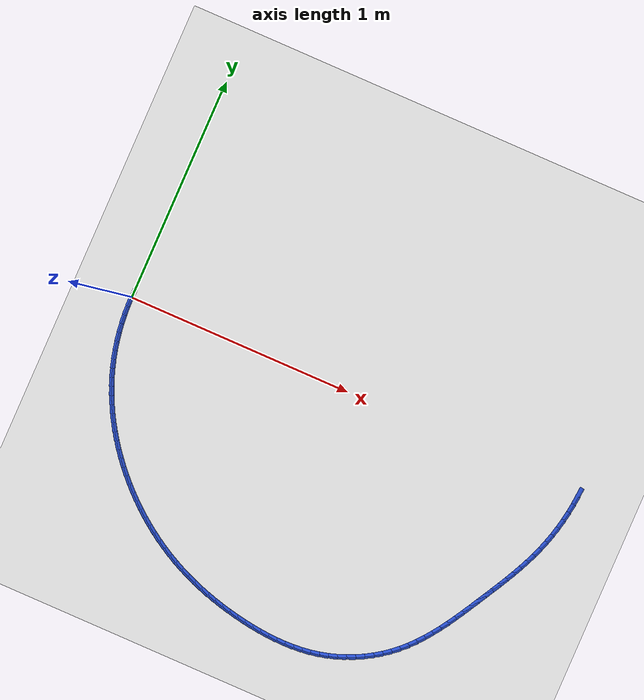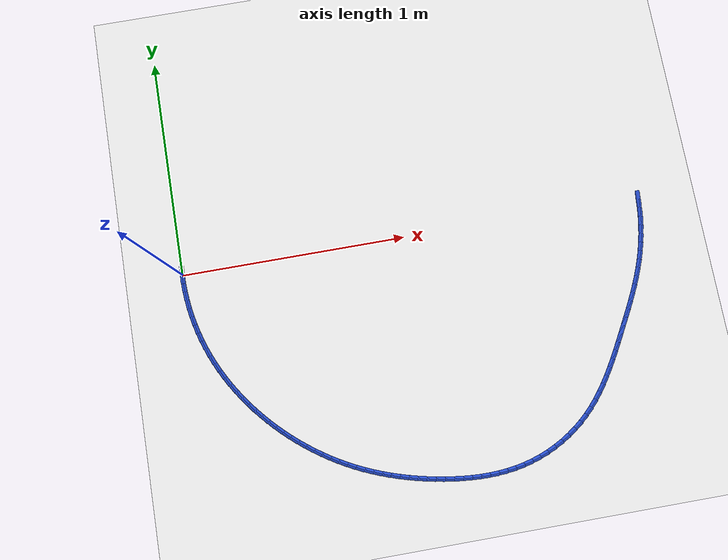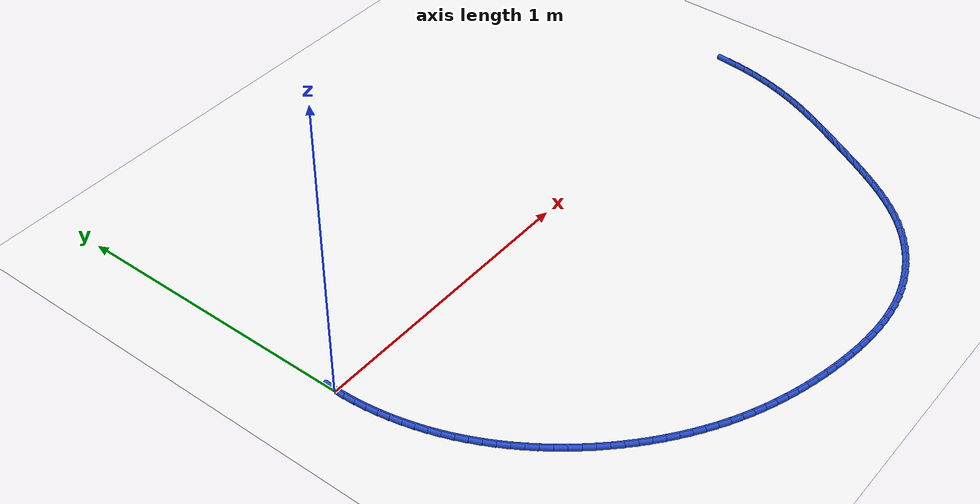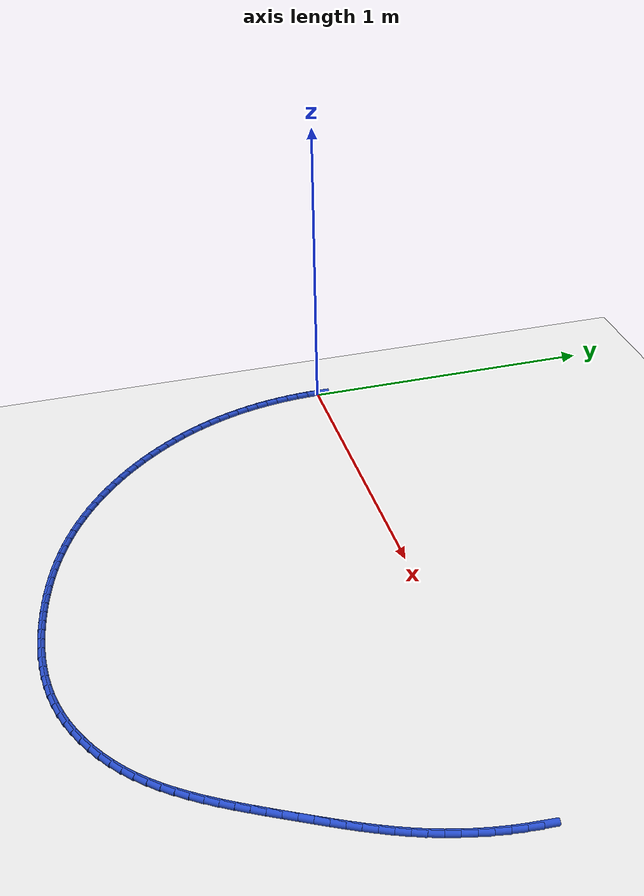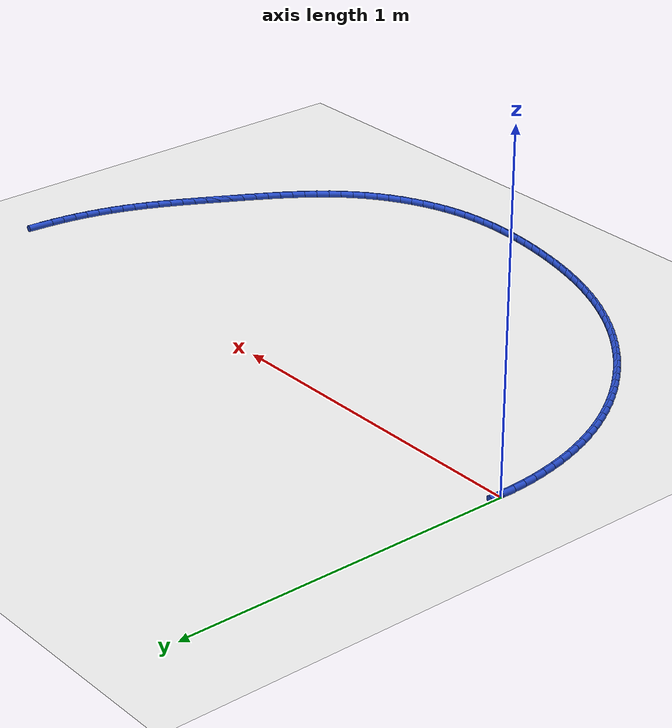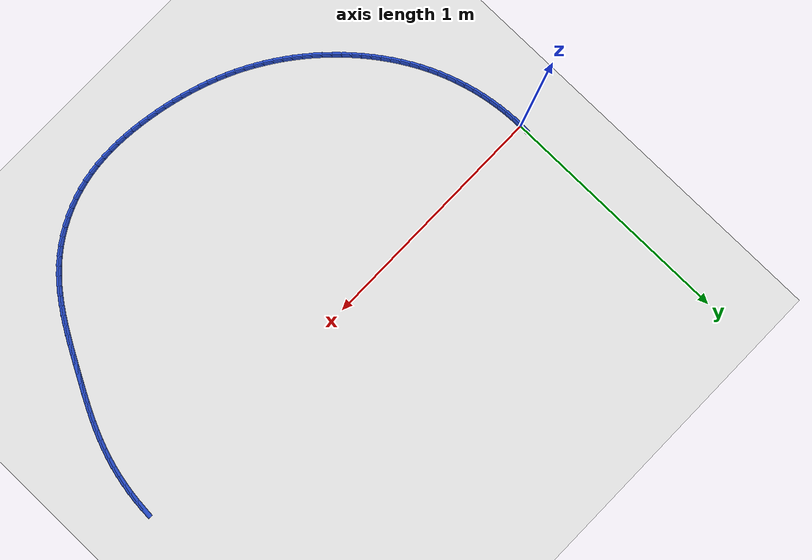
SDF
<sdf version="1.6">
 <world name="default">
  <model name="ground_plane">
   <static>1</static>
   <link name="link">
    <collision name="collision">
     <geometry><plane><normal>0 0 1</normal><size>100 100</size></plane></geometry>
     <surface><friction><ode><mu>100</mu><mu2>50</mu2></ode></friction></surface>
    </collision>
    <visual name="visual">
     <cast_shadows>0</cast_shadows>
     <geometry><plane><normal>0 0 1</normal><size>100 100</size></plane></geometry>
     <material>
      <script><uri>file://media/materials/scripts/gazebo.material</uri><name>Gazebo/WhiteGlow</name></script>
     </material>
    </visual>
   </link>
  </model>
  <model name="line">
   <link name="link_0">
    <pose>-1.734723475976807e-17 -8.326672684688674e-17 0.01 0 1.57 1.5463397447681198</pose>
    <collision name="collision">
     <geometry><cylinder><radius>0.01</radius><length>0.08</length></cylinder></geometry>
    </collision>
    <visual name="visual">
     <material>
      <script><name>Gazebo/Blue</name><uri>file://media/materials/scripts/gazebo.material</uri></script>
     </material>
     <geometry><cylinder><radius>0.01</radius><length>0.08</length></cylinder></geometry>
    </visual>
   </link>
   <link name="link_85">
    <pose>2.0703467081932185 -0.01295812340096764 0.01 0 1.57 1.4845244839015108</pose>
    <collision name="collision">
     <geometry><cylinder><radius>0.01</radius><length>0.08</length></cylinder></geometry>
    </collision>
    <visual name="visual">
     <material>
      <script><name>Gazebo/Blue</name><uri>file://media/materials/scripts/gazebo.material</uri></script>
     </material>
     <geometry><cylinder><radius>0.01</radius><length>0.08</length></cylinder></geometry>
    </visual>
   </link>
   <link name="link_86">
    <pose>2.066946954584286 -0.0522677603581691 0.01 0 1.57 1.443330827174992</pose>
    <collision name="collision">
     <geometry><cylinder><radius>0.01</radius><length>0.08</length></cylinder></geometry>
    </collision>
    <visual name="visual">
     <material>
      <script><name>Gazebo/Blue</name><uri>file://media/materials/scripts/gazebo.material</uri></script>
     </material>
     <geometry><cylinder><radius>0.01</radius><length>0.08</length></cylinder></geometry>
    </visual>
   </link>
   <link name="link_87">
    <pose>2.0619278630375093 -0.09143035405833054 0.01 0 1.57 1.4029884735146863</pose>
    <collision name="collision">
     <geometry><cylinder><radius>0.01</radius><length>0.08</length></cylinder></geometry>
    </collision>
    <visual name="visual">
     <material>
      <script><name>Gazebo/Blue</name><uri>file://media/materials/scripts/gazebo.material</uri></script>
     </material>
     <geometry><cylinder><radius>0.01</radius><length>0.08</length></cylinder></geometry>
    </visual>
   </link>
   <link name="link_88">
    <pose>2.0553368236039953 -0.13033828424824406 0.01 0 1.57 1.3632821062775435</pose>
    <collision name="collision">
     <geometry><cylinder><radius>0.01</radius><length>0.08</length></cylinder></geometry>
    </collision>
    <visual name="visual">
     <material>
      <script><name>Gazebo/Blue</name><uri>file://media/materials/scripts/gazebo.material</uri></script>
     </material>
     <geometry><cylinder><radius>0.01</radius><length>0.08</length></cylinder></geometry>
    </visual>
   </link>
   <link name="link_89">
    <pose>2.0472212263348495 -0.16888393067470264 0.01 0 1.57 1.323993542248742</pose>
    <collision name="collision">
     <geometry><cylinder><radius>0.01</radius><length>0.08</length></cylinder></geometry>
    </collision>
    <visual name="visual">
     <material>
      <script><name>Gazebo/Blue</name><uri>file://media/materials/scripts/gazebo.material</uri></script>
     </material>
     <geometry><cylinder><radius>0.01</radius><length>0.08</length></cylinder></geometry>
    </visual>
   </link>
   <link name="link_90">
    <pose>2.0376284612811775 -0.20695967308449695 0.01 0 1.57 1.2849006258452742</pose>
    <collision name="collision">
     <geometry><cylinder><radius>0.01</radius><length>0.08</length></cylinder></geometry>
    </collision>
    <visual name="visual">
     <material>
      <script><name>Gazebo/Blue</name><uri>file://media/materials/scripts/gazebo.material</uri></script>
     </material>
     <geometry><cylinder><radius>0.01</radius><length>0.08</length></cylinder></geometry>
    </visual>
   </link>
   <link name="link_91">
    <pose>2.0266059184940834 -0.24445789122441983 0.01 0 1.57 1.245778142393039</pose>
    <collision name="collision">
     <geometry><cylinder><radius>0.01</radius><length>0.08</length></cylinder></geometry>
    </collision>
    <visual name="visual">
     <material>
      <script><name>Gazebo/Blue</name><uri>file://media/materials/scripts/gazebo.material</uri></script>
     </material>
     <geometry><cylinder><radius>0.01</radius><length>0.08</length></cylinder></geometry>
    </visual>
   </link>
   <link name="link_92">
    <pose>2.014201048050268 -0.281271090853228 0.01 0 1.57 1.2075147434683184</pose>
    <collision name="collision">
     <geometry><cylinder><radius>0.01</radius><length>0.08</length></cylinder></geometry>
    </collision>
    <visual name="visual">
     <material>
      <script><name>Gazebo/Blue</name><uri>file://media/materials/scripts/gazebo.material</uri></script>
     </material>
     <geometry><cylinder><radius>0.01</radius><length>0.08</length></cylinder></geometry>
    </visual>
   </link>
   <link name="link_93">
    <pose>2.000487071893668 -0.31734588071222397 0.01 0 1.57 1.172996963601097</pose>
    <collision name="collision">
     <geometry><cylinder><radius>0.01</radius><length>0.08</length></cylinder></geometry>
    </collision>
    <visual name="visual">
     <material>
      <script><name>Gazebo/Blue</name><uri>file://media/materials/scripts/gazebo.material</uri></script>
     </material>
     <geometry><cylinder><radius>0.01</radius><length>0.08</length></cylinder></geometry>
    </visual>
   </link>
   <link name="link_94">
    <pose>1.985603036824332 -0.35276705592277136 0.01 0 1.57 1.1429141929614979</pose>
    <collision name="collision">
     <geometry><cylinder><radius>0.01</radius><length>0.08</length></cylinder></geometry>
    </collision>
    <visual name="visual">
     <material>
      <script><name>Gazebo/Blue</name><uri>file://media/materials/scripts/gazebo.material</uri></script>
     </material>
     <geometry><cylinder><radius>0.01</radius><length>0.08</length></cylinder></geometry>
    </visual>
   </link>
   <link name="link_95">
    <pose>1.969698347960748 -0.3876411568649848 0.01 0 1.57 1.117443313857368</pose>
    <collision name="collision">
     <geometry><cylinder><radius>0.01</radius><length>0.08</length></cylinder></geometry>
    </collision>
    <visual name="visual">
     <material>
      <script><name>Gazebo/Blue</name><uri>file://media/materials/scripts/gazebo.material</uri></script>
     </material>
     <geometry><cylinder><radius>0.01</radius><length>0.08</length></cylinder></geometry>
    </visual>
   </link>
   <link name="link_96">
    <pose>1.952922410421403 -0.42207472391898143 0.01 0 1.57 1.0966937806045811</pose>
    <collision name="collision">
     <geometry><cylinder><radius>0.01</radius><length>0.08</length></cylinder></geometry>
    </collision>
    <visual name="visual">
     <material>
      <script><name>Gazebo/Blue</name><uri>file://media/materials/scripts/gazebo.material</uri></script>
     </material>
     <geometry><cylinder><radius>0.01</radius><length>0.08</length></cylinder></geometry>
    </visual>
   </link>
   <link name="link_97">
    <pose>1.9354246293247845 -0.45617429746487764 0.01 0 1.57 1.080722045909562</pose>
    <collision name="collision">
     <geometry><cylinder><radius>0.01</radius><length>0.08</length></cylinder></geometry>
    </collision>
    <visual name="visual">
     <material>
      <script><name>Gazebo/Blue</name><uri>file://media/materials/scripts/gazebo.material</uri></script>
     </material>
     <geometry><cylinder><radius>0.01</radius><length>0.08</length></cylinder></geometry>
    </visual>
   </link>
   <link name="link_98">
    <pose>1.9173544097893798 -0.4900464178827895 0.01 0 1.57 1.0695448128097673</pose>
    <collision name="collision">
     <geometry><cylinder><radius>0.01</radius><length>0.08</length></cylinder></geometry>
    </collision>
    <visual name="visual">
     <material>
      <script><name>Gazebo/Blue</name><uri>file://media/materials/scripts/gazebo.material</uri></script>
     </material>
     <geometry><cylinder><radius>0.01</radius><length>0.08</length></cylinder></geometry>
    </visual>
   </link>
   <link name="link_99">
    <pose>1.8988611569336746 -0.5237976255528342 0.01 0 1.57 1.0631499691859727</pose>
    <collision name="collision">
     <geometry><cylinder><radius>0.01</radius><length>0.08</length></cylinder></geometry>
    </collision>
    <visual name="visual">
     <material>
      <script><name>Gazebo/Blue</name><uri>file://media/materials/scripts/gazebo.material</uri></script>
     </material>
     <geometry><cylinder><radius>0.01</radius><length>0.08</length></cylinder></geometry>
    </visual>
   </link>
   <link name="link_100">
    <pose>1.8800942758761578 -0.5575344608551265 0.01 0 1.57 1.0612336300380922</pose>
    <collision name="collision">
     <geometry><cylinder><radius>0.01</radius><length>0.08</length></cylinder></geometry>
    </collision>
    <visual name="visual">
     <material>
      <script><name>Gazebo/Blue</name><uri>file://media/materials/scripts/gazebo.material</uri></script>
     </material>
     <geometry><cylinder><radius>0.01</radius><length>0.08</length></cylinder></geometry>
    </visual>
   </link>
   <link name="link_101">
    <pose>1.8611951581894954 -0.5913562829752291 0.01 0 1.57 1.0586135874599247</pose>
    <collision name="collision">
     <geometry><cylinder><radius>0.01</radius><length>0.08</length></cylinder></geometry>
    </collision>
    <visual name="visual">
     <material>
      <script><name>Gazebo/Blue</name><uri>file://media/materials/scripts/gazebo.material</uri></script>
     </material>
     <geometry><cylinder><radius>0.01</radius><length>0.08</length></cylinder></geometry>
    </visual>
   </link>
   <link name="link_102">
    <pose>1.8421527488368659 -0.6252258388191491 0.01 0 1.57 1.0506841521490629</pose>
    <collision name="collision">
     <geometry><cylinder><radius>0.01</radius><length>0.08</length></cylinder></geometry>
    </collision>
    <visual name="visual">
     <material>
      <script><name>Gazebo/Blue</name><uri>file://media/materials/scripts/gazebo.material</uri></script>
     </material>
     <geometry><cylinder><radius>0.01</radius><length>0.08</length></cylinder></geometry>
    </visual>
   </link>
   <link name="link_103">
    <pose>1.8228193928582714 -0.6589834637354668 0.01 0 1.57 1.0372619425298901</pose>
    <collision name="collision">
     <geometry><cylinder><radius>0.01</radius><length>0.08</length></cylinder></geometry>
    </collision>
    <visual name="visual">
     <material>
      <script><name>Gazebo/Blue</name><uri>file://media/materials/scripts/gazebo.material</uri></script>
     </material>
     <geometry><cylinder><radius>0.01</radius><length>0.08</length></cylinder></geometry>
    </visual>
   </link>
   <link name="link_104">
    <pose>1.8030426030587525 -0.6924651627525557 0.01 0 1.57 1.018278907282143</pose>
    <collision name="collision">
     <geometry><cylinder><radius>0.01</radius><length>0.08</length></cylinder></geometry>
    </collision>
    <visual name="visual">
     <material>
      <script><name>Gazebo/Blue</name><uri>file://media/materials/scripts/gazebo.material</uri></script>
     </material>
     <geometry><cylinder><radius>0.01</radius><length>0.08</length></cylinder></geometry>
    </visual>
   </link>
   <link name="link_105">
    <pose>1.782669892243351 -0.7255069408987871 0.01 0 1.57 0.9936303065916782</pose>
    <collision name="collision">
     <geometry><cylinder><radius>0.01</radius><length>0.08</length></cylinder></geometry>
    </collision>
    <visual name="visual">
     <material>
      <script><name>Gazebo/Blue</name><uri>file://media/materials/scripts/gazebo.material</uri></script>
     </material>
     <geometry><cylinder><radius>0.01</radius><length>0.08</length></cylinder></geometry>
    </visual>
   </link>
   <link name="link_106">
    <pose>1.7615487732171047 -0.7579448032025338 0.01 0 1.57 0.963191313983952</pose>
    <collision name="collision">
     <geometry><cylinder><radius>0.01</radius><length>0.08</length></cylinder></geometry>
    </collision>
    <visual name="visual">
     <material>
      <script><name>Gazebo/Blue</name><uri>file://media/materials/scripts/gazebo.material</uri></script>
     </material>
     <geometry><cylinder><radius>0.01</radius><length>0.08</length></cylinder></geometry>
    </visual>
   </link>
   <link name="link_107">
    <pose>1.7395267587850543 -0.7896147546921682 0.01 0 1.57 0.9268401667294303</pose>
    <collision name="collision">
     <geometry><cylinder><radius>0.01</radius><length>0.08</length></cylinder></geometry>
    </collision>
    <visual name="visual">
     <material>
      <script><name>Gazebo/Blue</name><uri>file://media/materials/scripts/gazebo.material</uri></script>
     </material>
     <geometry><cylinder><radius>0.01</radius><length>0.08</length></cylinder></geometry>
    </visual>
   </link>
   <link name="link_108">
    <pose>1.71645136175224 -0.8203528003960635 0.01 0 1.57 0.8844890827794963</pose>
    <collision name="collision">
     <geometry><cylinder><radius>0.01</radius><length>0.08</length></cylinder></geometry>
    </collision>
    <visual name="visual">
     <material>
      <script><name>Gazebo/Blue</name><uri>file://media/materials/scripts/gazebo.material</uri></script>
     </material>
     <geometry><cylinder><radius>0.01</radius><length>0.08</length></cylinder></geometry>
    </visual>
   </link>
   <link name="link_109">
    <pose>1.692170094923701 -0.8499949453425913 0.01 0 1.57 0.8361234073815302</pose>
    <collision name="collision">
     <geometry><cylinder><radius>0.01</radius><length>0.08</length></cylinder></geometry>
    </collision>
    <visual name="visual">
     <material>
      <script><name>Gazebo/Blue</name><uri>file://media/materials/scripts/gazebo.material</uri></script>
     </material>
     <geometry><cylinder><radius>0.01</radius><length>0.08</length></cylinder></geometry>
    </visual>
   </link>
   <link name="link_110">
    <pose>1.666530471104478 -0.8783771945601251 0.01 0 1.57 0.781847750403918</pose>
    <collision name="collision">
     <geometry><cylinder><radius>0.01</radius><length>0.08</length></cylinder></geometry>
    </collision>
    <visual name="visual">
     <material>
      <script><name>Gazebo/Blue</name><uri>file://media/materials/scripts/gazebo.material</uri></script>
     </material>
     <geometry><cylinder><radius>0.01</radius><length>0.08</length></cylinder></geometry>
    </visual>
   </link>
   <link name="link_111">
    <pose>1.6393800030996108 -0.9053355530770362 0.01 0 1.57 0.7220717400866286</pose>
    <collision name="collision">
     <geometry><cylinder><radius>0.01</radius><length>0.08</length></cylinder></geometry>
    </collision>
    <visual name="visual">
     <material>
      <script><name>Gazebo/Blue</name><uri>file://media/materials/scripts/gazebo.material</uri></script>
     </material>
     <geometry><cylinder><radius>0.01</radius><length>0.08</length></cylinder></geometry>
    </visual>
   </link>
   <link name="link_112">
    <pose>1.6105722898065495 -0.9307076584757472 0.01 0 1.57 0.6604538289510311</pose>
    <collision name="collision">
     <geometry><cylinder><radius>0.01</radius><length>0.08</length></cylinder></geometry>
    </collision>
    <visual name="visual">
     <material>
      <script><name>Gazebo/Blue</name><uri>file://media/materials/scripts/gazebo.material</uri></script>
     </material>
     <geometry><cylinder><radius>0.01</radius><length>0.08</length></cylinder></geometry>
    </visual>
   </link>
   <link name="link_113">
    <pose>1.5801105889659732 -0.9543712933338835 0.01 0 1.57 0.6002450952311604</pose>
    <collision name="collision">
     <geometry><cylinder><radius>0.01</radius><length>0.08</length></cylinder></geometry>
    </collision>
    <visual name="visual">
     <material>
      <script><name>Gazebo/Blue</name><uri>file://media/materials/scripts/gazebo.material</uri></script>
     </material>
     <geometry><cylinder><radius>0.01</radius><length>0.08</length></cylinder></geometry>
    </visual>
   </link>
   <link name="link_114">
    <pose>1.548153400283253 -0.9762458828596913 0.01 0 1.57 0.5411860396332345</pose>
    <collision name="collision">
     <geometry><cylinder><radius>0.01</radius><length>0.08</length></cylinder></geometry>
    </collision>
    <visual name="visual">
     <material>
      <script><name>Gazebo/Blue</name><uri>file://media/materials/scripts/gazebo.material</uri></script>
     </material>
     <geometry><cylinder><radius>0.01</radius><length>0.08</length></cylinder></geometry>
    </visual>
   </link>
   <link name="link_115">
    <pose>1.514866426650068 -0.9962527844685202 0.01 0 1.57 0.4828498829037632</pose>
    <collision name="collision">
     <geometry><cylinder><radius>0.01</radius><length>0.08</length></cylinder></geometry>
    </collision>
    <visual name="visual">
     <material>
      <script><name>Gazebo/Blue</name><uri>file://media/materials/scripts/gazebo.material</uri></script>
     </material>
     <geometry><cylinder><radius>0.01</radius><length>0.08</length></cylinder></geometry>
    </visual>
   </link>
   <link name="link_116">
    <pose>1.4804153709580956 -1.014313355575717 0.01 0 1.57 0.42480754951045624</pose>
    <collision name="collision">
     <geometry><cylinder><radius>0.01</radius><length>0.08</length></cylinder></geometry>
    </collision>
    <visual name="visual">
     <material>
      <script><name>Gazebo/Blue</name><uri>file://media/materials/scripts/gazebo.material</uri></script>
     </material>
     <geometry><cylinder><radius>0.01</radius><length>0.08</length></cylinder></geometry>
    </visual>
   </link>
   <link name="link_117">
    <pose>1.4449659360990141 -1.0303489535966308 0.01 0 1.57 0.3666292740612634</pose>
    <collision name="collision">
     <geometry><cylinder><radius>0.01</radius><length>0.08</length></cylinder></geometry>
    </collision>
    <visual name="visual">
     <material>
      <script><name>Gazebo/Blue</name><uri>file://media/materials/scripts/gazebo.material</uri></script>
     </material>
     <geometry><cylinder><radius>0.01</radius><length>0.08</length></cylinder></geometry>
    </visual>
   </link>
   <link name="link_118">
    <pose>1.408683824964502 -1.0442809359466103 0.01 0 1.57 0.3078855853134023</pose>
    <collision name="collision">
     <geometry><cylinder><radius>0.01</radius><length>0.08</length></cylinder></geometry>
    </collision>
    <visual name="visual">
     <material>
      <script><name>Gazebo/Blue</name><uri>file://media/materials/scripts/gazebo.material</uri></script>
     </material>
     <geometry><cylinder><radius>0.01</radius><length>0.08</length></cylinder></geometry>
    </visual>
   </link>
   <link name="link_119">
    <pose>1.3717347404462368 -1.0560306600410037 0.01 0 1.57 0.24818150163143762</pose>
    <collision name="collision">
     <geometry><cylinder><radius>0.01</radius><length>0.08</length></cylinder></geometry>
    </collision>
    <visual name="visual">
     <material>
      <script><name>Gazebo/Blue</name><uri>file://media/materials/scripts/gazebo.material</uri></script>
     </material>
     <geometry><cylinder><radius>0.01</radius><length>0.08</length></cylinder></geometry>
    </visual>
   </link>
   <link name="link_120">
    <pose>1.3342837065252577 -1.0655209675514457 0.01 0 1.57 0.1890291690347427</pose>
    <collision name="collision">
     <geometry><cylinder><radius>0.01</radius><length>0.08</length></cylinder></geometry>
    </collision>
    <visual name="visual">
     <material>
      <script><name>Gazebo/Blue</name><uri>file://media/materials/scripts/gazebo.material</uri></script>
     </material>
     <geometry><cylinder><radius>0.01</radius><length>0.08</length></cylinder></geometry>
    </visual>
   </link>
   <link name="link_121">
    <pose>1.296457847856799 -1.072757556875134 0.01 0 1.57 0.13331050287324353</pose>
    <collision name="collision">
     <geometry><cylinder><radius>0.01</radius><length>0.08</length></cylinder></geometry>
    </collision>
    <visual name="visual">
     <material>
      <script><name>Gazebo/Blue</name><uri>file://media/materials/scripts/gazebo.material</uri></script>
     </material>
     <geometry><cylinder><radius>0.01</radius><length>0.08</length></cylinder></geometry>
    </visual>
   </link>
   <link name="link_122">
    <pose>1.2583271199152875 -1.0778711115118973 0.01 0 1.57 0.0814335693078589</pose>
    <collision name="collision">
     <geometry><cylinder><radius>0.01</radius><length>0.08</length></cylinder></geometry>
    </collision>
    <visual name="visual">
     <material>
      <script><name>Gazebo/Blue</name><uri>file://media/materials/scripts/gazebo.material</uri></script>
     </material>
     <geometry><cylinder><radius>0.01</radius><length>0.08</length></cylinder></geometry>
    </visual>
   </link>
   <link name="link_123">
    <pose>1.2199567399547586 -1.0810026738114422 0.01 0 1.57 0.03347091759458577</pose>
    <collision name="collision">
     <geometry><cylinder><radius>0.01</radius><length>0.08</length></cylinder></geometry>
    </collision>
    <visual name="visual">
     <material>
      <script><name>Gazebo/Blue</name><uri>file://media/materials/scripts/gazebo.material</uri></script>
     </material>
     <geometry><cylinder><radius>0.01</radius><length>0.08</length></cylinder></geometry>
    </visual>
   </link>
   <link name="link_124">
    <pose>1.1814119252292472 -1.082293286123476 0.01 0 1.57 -0.010588288112732163</pose>
    <collision name="collision">
     <geometry><cylinder><radius>0.01</radius><length>0.08</length></cylinder></geometry>
    </collision>
    <visual name="visual">
     <material>
      <script><name>Gazebo/Blue</name><uri>file://media/materials/scripts/gazebo.material</uri></script>
     </material>
     <geometry><cylinder><radius>0.01</radius><length>0.08</length></cylinder></geometry>
    </visual>
   </link>
   <link name="link_125">
    <pose>1.14275789299279 -1.0818839907977051 0.01 0 1.57 -0.05081566460030541</pose>
    <collision name="collision">
     <geometry><cylinder><radius>0.01</radius><length>0.08</length></cylinder></geometry>
    </collision>
    <visual name="visual">
     <material>
      <script><name>Gazebo/Blue</name><uri>file://media/materials/scripts/gazebo.material</uri></script>
     </material>
     <geometry><cylinder><radius>0.01</radius><length>0.08</length></cylinder></geometry>
    </visual>
   </link>
   <link name="link_126">
    <pose>1.1040598604994216 -1.0799158301838367 0.01 0 1.57 -0.08732292867086368</pose>
    <collision name="collision">
     <geometry><cylinder><radius>0.01</radius><length>0.08</length></cylinder></geometry>
    </collision>
    <visual name="visual">
     <material>
      <script><name>Gazebo/Blue</name><uri>file://media/materials/scripts/gazebo.material</uri></script>
     </material>
     <geometry><cylinder><radius>0.01</radius><length>0.08</length></cylinder></geometry>
    </visual>
   </link>
   <link name="link_127">
    <pose>1.0653830450031794 -1.0765298466315774 0.01 0 1.57 -0.12024421223643925</pose>
    <collision name="collision">
     <geometry><cylinder><radius>0.01</radius><length>0.08</length></cylinder></geometry>
    </collision>
    <visual name="visual">
     <material>
      <script><name>Gazebo/Blue</name><uri>file://media/materials/scripts/gazebo.material</uri></script>
     </material>
     <geometry><cylinder><radius>0.01</radius><length>0.08</length></cylinder></geometry>
    </visual>
   </link>
   <link name="link_128">
    <pose>1.0267926637580984 -1.0718670824906342 0.01 0 1.57 -0.14972164831444895</pose>
    <collision name="collision">
     <geometry><cylinder><radius>0.01</radius><length>0.08</length></cylinder></geometry>
    </collision>
    <visual name="visual">
     <material>
      <script><name>Gazebo/Blue</name><uri>file://media/materials/scripts/gazebo.material</uri></script>
     </material>
     <geometry><cylinder><radius>0.01</radius><length>0.08</length></cylinder></geometry>
    </visual>
   </link>
   <link name="link_129">
    <pose>0.9883539340182139 -1.0660685801107137 0.01 0 1.57 -0.17609617010261241</pose>
    <collision name="collision">
     <geometry><cylinder><radius>0.01</radius><length>0.08</length></cylinder></geometry>
    </collision>
    <visual name="visual">
     <material>
      <script><name>Gazebo/Blue</name><uri>file://media/materials/scripts/gazebo.material</uri></script>
     </material>
     <geometry><cylinder><radius>0.01</radius><length>0.08</length></cylinder></geometry>
    </visual>
   </link>
   <link name="link_130">
    <pose>0.9501304293879151 -1.059267117427658 0.01 0 1.57 -0.20181646050760502</pose>
    <collision name="collision">
     <geometry><cylinder><radius>0.01</radius><length>0.08</length></cylinder></geometry>
    </collision>
    <visual name="visual">
     <material>
      <script><name>Gazebo/Blue</name><uri>file://media/materials/scripts/gazebo.material</uri></script>
     </material>
     <geometry><cylinder><radius>0.01</radius><length>0.08</length></cylinder></geometry>
    </visual>
   </link>
   <link name="link_131">
    <pose>0.9121666684895648 -1.0514996622647808 0.01 0 1.57 -0.22842843514844216</pose>
    <collision name="collision">
     <geometry><cylinder><radius>0.01</radius><length>0.08</length></cylinder></geometry>
    </collision>
    <visual name="visual">
     <material>
      <script><name>Gazebo/Blue</name><uri>file://media/materials/scripts/gazebo.material</uri></script>
     </material>
     <geometry><cylinder><radius>0.01</radius><length>0.08</length></cylinder></geometry>
    </visual>
   </link>
   <link name="link_132">
    <pose>0.8744949012659788 -1.0427414944539455 0.01 0 1.57 -0.25597787289016</pose>
    <collision name="collision">
     <geometry><cylinder><radius>0.01</radius><length>0.08</length></cylinder></geometry>
    </collision>
    <visual name="visual">
     <material>
      <script><name>Gazebo/Blue</name><uri>file://media/materials/scripts/gazebo.material</uri></script>
     </material>
     <geometry><cylinder><radius>0.01</radius><length>0.08</length></cylinder></geometry>
    </visual>
   </link>
   <link name="link_133">
    <pose>0.8371471742958579 -1.0329668712945068 0.01 0 1.57 -0.28448141193538745</pose>
    <collision name="collision">
     <geometry><cylinder><radius>0.01</radius><length>0.08</length></cylinder></geometry>
    </collision>
    <visual name="visual">
     <material>
      <script><name>Gazebo/Blue</name><uri>file://media/materials/scripts/gazebo.material</uri></script>
     </material>
     <geometry><cylinder><radius>0.01</radius><length>0.08</length></cylinder></geometry>
    </visual>
   </link>
   <link name="link_134">
    <pose>0.8001555341579029 -1.0221500500858214 0.01 0 1.57 -0.3139507318787405</pose>
    <collision name="collision">
     <geometry><cylinder><radius>0.01</radius><length>0.08</length></cylinder></geometry>
    </collision>
    <visual name="visual">
     <material>
      <script><name>Gazebo/Blue</name><uri>file://media/materials/scripts/gazebo.material</uri></script>
     </material>
     <geometry><cylinder><radius>0.01</radius><length>0.08</length></cylinder></geometry>
    </visual>
   </link>
   <link name="link_135">
    <pose>0.7635520274308152 -1.0102652881272447 0.01 0 1.57 -0.34439167078153615</pose>
    <collision name="collision">
     <geometry><cylinder><radius>0.01</radius><length>0.08</length></cylinder></geometry>
    </collision>
    <visual name="visual">
     <material>
      <script><name>Gazebo/Blue</name><uri>file://media/materials/scripts/gazebo.material</uri></script>
     </material>
     <geometry><cylinder><radius>0.01</radius><length>0.08</length></cylinder></geometry>
    </visual>
   </link>
   <link name="link_136">
    <pose>0.7273687006932953 -0.9972868427181321 0.01 0 1.57 -0.3758033096052341</pose>
    <collision name="collision">
     <geometry><cylinder><radius>0.01</radius><length>0.08</length></cylinder></geometry>
    </collision>
    <visual name="visual">
     <material>
      <script><name>Gazebo/Blue</name><uri>file://media/materials/scripts/gazebo.material</uri></script>
     </material>
     <geometry><cylinder><radius>0.01</radius><length>0.08</length></cylinder></geometry>
    </visual>
   </link>
   <link name="link_137">
    <pose>0.6916376005240455 -0.9831889711578398 0.01 0 1.57 -0.40817705097606094</pose>
    <collision name="collision">
     <geometry><cylinder><radius>0.01</radius><length>0.08</length></cylinder></geometry>
    </collision>
    <visual name="visual">
     <material>
      <script><name>Gazebo/Blue</name><uri>file://media/materials/scripts/gazebo.material</uri></script>
     </material>
     <geometry><cylinder><radius>0.01</radius><length>0.08</length></cylinder></geometry>
    </visual>
   </link>
   <link name="link_138">
    <pose>0.6563907735017669 -0.9679459307457232 0.01 0 1.57 -0.4414957267086597</pose>
    <collision name="collision">
     <geometry><cylinder><radius>0.01</radius><length>0.08</length></cylinder></geometry>
    </collision>
    <visual name="visual">
     <material>
      <script><name>Gazebo/Blue</name><uri>file://media/materials/scripts/gazebo.material</uri></script>
     </material>
     <geometry><cylinder><radius>0.01</radius><length>0.08</length></cylinder></geometry>
    </visual>
   </link>
   <link name="link_139">
    <pose>0.6216602662051605 -0.9515319787811386 0.01 0 1.57 -0.47564944821991606</pose>
    <collision name="collision">
     <geometry><cylinder><radius>0.01</radius><length>0.08</length></cylinder></geometry>
    </collision>
    <visual name="visual">
     <material>
      <script><name>Gazebo/Blue</name><uri>file://media/materials/scripts/gazebo.material</uri></script>
     </material>
     <geometry><cylinder><radius>0.01</radius><length>0.08</length></cylinder></geometry>
    </visual>
   </link>
   <link name="link_140">
    <pose>0.5874782660344363 -0.9339250492846187 0.01 0 1.57 -0.5098254470307054</pose>
    <collision name="collision">
     <geometry><cylinder><radius>0.01</radius><length>0.08</length></cylinder></geometry>
    </collision>
    <visual name="visual">
     <material>
      <script><name>Gazebo/Blue</name><uri>file://media/materials/scripts/gazebo.material</uri></script>
     </material>
     <geometry><cylinder><radius>0.01</radius><length>0.08</length></cylinder></geometry>
    </visual>
   </link>
   <link name="link_141">
    <pose>0.5538783102711954 -0.9151383204487485 0.01 0 1.57 -0.5436136171778438</pose>
    <collision name="collision">
     <geometry><cylinder><radius>0.01</radius><length>0.08</length></cylinder></geometry>
    </collision>
    <visual name="visual">
     <material>
      <script><name>Gazebo/Blue</name><uri>file://media/materials/scripts/gazebo.material</uri></script>
     </material>
     <geometry><cylinder><radius>0.01</radius><length>0.08</length></cylinder></geometry>
    </visual>
   </link>
   <link name="link_142">
    <pose>0.5208946876588253 -0.8952045904480594 0.01 0 1.57 -0.5770549290567888</pose>
    <collision name="collision">
     <geometry><cylinder><radius>0.01</radius><length>0.08</length></cylinder></geometry>
    </collision>
    <visual name="visual">
     <material>
      <script><name>Gazebo/Blue</name><uri>file://media/materials/scripts/gazebo.material</uri></script>
     </material>
     <geometry><cylinder><radius>0.01</radius><length>0.08</length></cylinder></geometry>
    </visual>
   </link>
   <link name="link_143">
    <pose>0.48856169504808533 -0.8741568691331324 0.01 0 1.57 -0.6101968123996717</pose>
    <collision name="collision">
     <geometry><cylinder><radius>0.01</radius><length>0.08</length></cylinder></geometry>
    </collision>
    <visual name="visual">
     <material>
      <script><name>Gazebo/Blue</name><uri>file://media/materials/scripts/gazebo.material</uri></script>
     </material>
     <geometry><cylinder><radius>0.01</radius><length>0.08</length></cylinder></geometry>
    </visual>
   </link>
   <link name="link_144">
    <pose>0.4569136292897332 -0.8520281663545458 0.01 0 1.57 -0.6430880143653126</pose>
    <collision name="collision">
     <geometry><cylinder><radius>0.01</radius><length>0.08</length></cylinder></geometry>
    </collision>
    <visual name="visual">
     <material>
      <script><name>Gazebo/Blue</name><uri>file://media/materials/scripts/gazebo.material</uri></script>
     </material>
     <geometry><cylinder><radius>0.01</radius><length>0.08</length></cylinder></geometry>
    </visual>
   </link>
   <link name="link_145">
    <pose>0.42598478723452743 -0.8288514919628809 0.01 0 1.57 -0.675778300500029</pose>
    <collision name="collision">
     <geometry><cylinder><radius>0.01</radius><length>0.08</length></cylinder></geometry>
    </collision>
    <visual name="visual">
     <material>
      <script><name>Gazebo/Blue</name><uri>file://media/materials/scripts/gazebo.material</uri></script>
     </material>
     <geometry><cylinder><radius>0.01</radius><length>0.08</length></cylinder></geometry>
    </visual>
   </link>
   <link name="link_146">
    <pose>0.3958094657332261 -0.8046598558087165 0.01 0 1.57 -0.7083181940229016</pose>
    <collision name="collision">
     <geometry><cylinder><radius>0.01</radius><length>0.08</length></cylinder></geometry>
    </collision>
    <visual name="visual">
     <material>
      <script><name>Gazebo/Blue</name><uri>file://media/materials/scripts/gazebo.material</uri></script>
     </material>
     <geometry><cylinder><radius>0.01</radius><length>0.08</length></cylinder></geometry>
    </visual>
   </link>
   <link name="link_147">
    <pose>0.36642196163658725 -0.779486267742633 0.01 0 1.57 -0.7407587459722306</pose>
    <collision name="collision">
     <geometry><cylinder><radius>0.01</radius><length>0.08</length></cylinder></geometry>
    </collision>
    <visual name="visual">
     <material>
      <script><name>Gazebo/Blue</name><uri>file://media/materials/scripts/gazebo.material</uri></script>
     </material>
     <geometry><cylinder><radius>0.01</radius><length>0.08</length></cylinder></geometry>
    </visual>
   </link>
   <link name="link_148">
    <pose>0.33785657179537026 -0.7533637376152107 0.01 0 1.57 -0.7731513284601881</pose>
    <collision name="collision">
     <geometry><cylinder><radius>0.01</radius><length>0.08</length></cylinder></geometry>
    </collision>
    <visual name="visual">
     <material>
      <script><name>Gazebo/Blue</name><uri>file://media/materials/scripts/gazebo.material</uri></script>
     </material>
     <geometry><cylinder><radius>0.01</radius><length>0.08</length></cylinder></geometry>
    </visual>
   </link>
   <link name="link_149">
    <pose>0.3101475930603328 -0.7263252752770292 0.01 0 1.57 -0.8055474431277684</pose>
    <collision name="collision">
     <geometry><cylinder><radius>0.01</radius><length>0.08</length></cylinder></geometry>
    </collision>
    <visual name="visual">
     <material>
      <script><name>Gazebo/Blue</name><uri>file://media/materials/scripts/gazebo.material</uri></script>
     </material>
     <geometry><cylinder><radius>0.01</radius><length>0.08</length></cylinder></geometry>
    </visual>
   </link>
   <link name="link_150">
    <pose>0.2833293222822333 -0.6984038905786683 0.01 0 1.57 -0.8379987547615554</pose>
    <collision name="collision">
     <geometry><cylinder><radius>0.01</radius><length>0.08</length></cylinder></geometry>
    </collision>
    <visual name="visual">
     <material>
      <script><name>Gazebo/Blue</name><uri>file://media/materials/scripts/gazebo.material</uri></script>
     </material>
     <geometry><cylinder><radius>0.01</radius><length>0.08</length></cylinder></geometry>
    </visual>
   </link>
   <link name="link_151">
    <pose>0.2574360636003953 -0.6696325888588399 0.01 0 1.57 -0.8706750866857763</pose>
    <collision name="collision">
     <geometry><cylinder><radius>0.01</radius><length>0.08</length></cylinder></geometry>
    </collision>
    <visual name="visual">
     <material>
      <script><name>Gazebo/Blue</name><uri>file://media/materials/scripts/gazebo.material</uri></script>
     </material>
     <geometry><cylinder><radius>0.01</radius><length>0.08</length></cylinder></geometry>
    </visual>
   </link>
   <link name="link_152">
    <pose>0.23250606533382812 -0.6400419338758842 0.01 0 1.57 -0.9039447399010014</pose>
    <collision name="collision">
     <geometry><cylinder><radius>0.01</radius><length>0.08</length></cylinder></geometry>
    </collision>
    <visual name="visual">
     <material>
      <script><name>Gazebo/Blue</name><uri>file://media/materials/scripts/gazebo.material</uri></script>
     </material>
     <geometry><cylinder><radius>0.01</radius><length>0.08</length></cylinder></geometry>
    </visual>
   </link>
   <link name="link_153">
    <pose>0.20858802615138305 -0.6096560202688067 0.01 0 1.57 -0.937914561465189</pose>
    <collision name="collision">
     <geometry><cylinder><radius>0.01</radius><length>0.08</length></cylinder></geometry>
    </collision>
    <visual name="visual">
     <material>
      <script><name>Gazebo/Blue</name><uri>file://media/materials/scripts/gazebo.material</uri></script>
     </material>
     <geometry><cylinder><radius>0.01</radius><length>0.08</length></cylinder></geometry>
    </visual>
   </link>
   <link name="link_154">
    <pose>0.1857323558981624 -0.5784978834007517 0.01 0 1.57 -0.9726364137432505</pose>
    <collision name="collision">
     <geometry><cylinder><radius>0.01</radius><length>0.08</length></cylinder></geometry>
    </collision>
    <visual name="visual">
     <material>
      <script><name>Gazebo/Blue</name><uri>file://media/materials/scripts/gazebo.material</uri></script>
     </material>
     <geometry><cylinder><radius>0.01</radius><length>0.08</length></cylinder></geometry>
    </visual>
   </link>
   <link name="link_155">
    <pose>0.16398946441926715 -0.5465905586348612 0.01 0 1.57 -1.008157548885765</pose>
    <collision name="collision">
     <geometry><cylinder><radius>0.01</radius><length>0.08</length></cylinder></geometry>
    </collision>
    <visual name="visual">
     <material>
      <script><name>Gazebo/Blue</name><uri>file://media/materials/scripts/gazebo.material</uri></script>
     </material>
     <geometry><cylinder><radius>0.01</radius><length>0.08</length></cylinder></geometry>
    </visual>
   </link>
   <link name="link_156">
    <pose>0.14340976155979868 -0.5139570813342772 0.01 0 1.57 -1.0445196830294228</pose>
    <collision name="collision">
     <geometry><cylinder><radius>0.01</radius><length>0.08</length></cylinder></geometry>
    </collision>
    <visual name="visual">
     <material>
      <script><name>Gazebo/Blue</name><uri>file://media/materials/scripts/gazebo.material</uri></script>
     </material>
     <geometry><cylinder><radius>0.01</radius><length>0.08</length></cylinder></geometry>
    </visual>
   </link>
   <link name="link_157">
    <pose>0.12404365716485846 -0.4806204868621428 0.01 0 1.57 -1.0817579429932898</pose>
    <collision name="collision">
     <geometry><cylinder><radius>0.01</radius><length>0.08</length></cylinder></geometry>
    </collision>
    <visual name="visual">
     <material>
      <script><name>Gazebo/Blue</name><uri>file://media/materials/scripts/gazebo.material</uri></script>
     </material>
     <geometry><cylinder><radius>0.01</radius><length>0.08</length></cylinder></geometry>
    </visual>
   </link>
   <link name="link_158">
    <pose>0.10594156107954751 -0.4466038105815997 0.01 0 1.57 -1.1198996989729848</pose>
    <collision name="collision">
     <geometry><cylinder><radius>0.01</radius><length>0.08</length></cylinder></geometry>
    </collision>
    <visual name="visual">
     <material>
      <script><name>Gazebo/Blue</name><uri>file://media/materials/scripts/gazebo.material</uri></script>
     </material>
     <geometry><cylinder><radius>0.01</radius><length>0.08</length></cylinder></geometry>
    </visual>
   </link>
   <link name="link_159">
    <pose>0.089153883148968 -0.4119300878557921 0.01 0 1.57 -1.1589633070103675</pose>
    <collision name="collision">
     <geometry><cylinder><radius>0.01</radius><length>0.08</length></cylinder></geometry>
    </collision>
    <visual name="visual">
     <material>
      <script><name>Gazebo/Blue</name><uri>file://media/materials/scripts/gazebo.material</uri></script>
     </material>
     <geometry><cylinder><radius>0.01</radius><length>0.08</length></cylinder></geometry>
    </visual>
   </link>
   <link name="link_160">
    <pose>0.07373103321822096 -0.3766223540478618 0.01 0 1.57 -1.198915496619631</pose>
    <collision name="collision">
     <geometry><cylinder><radius>0.01</radius><length>0.08</length></cylinder></geometry>
    </collision>
    <visual name="visual">
     <material>
      <script><name>Gazebo/Blue</name><uri>file://media/materials/scripts/gazebo.material</uri></script>
     </material>
     <geometry><cylinder><radius>0.01</radius><length>0.08</length></cylinder></geometry>
    </visual>
   </link>
   <link name="link_161">
    <pose>0.05972222708816279 -0.3407049650917677 0.01 0 1.57 -1.2390722488903183</pose>
    <collision name="collision">
     <geometry><cylinder><radius>0.01</radius><length>0.08</length></cylinder></geometry>
    </collision>
    <visual name="visual">
     <material>
      <script><name>Gazebo/Blue</name><uri>file://media/materials/scripts/gazebo.material</uri></script>
     </material>
     <geometry><cylinder><radius>0.01</radius><length>0.08</length></cylinder></geometry>
    </visual>
   </link>
   <link name="link_162">
    <pose>0.04715648394305814 -0.3042246136670052 0.01 0 1.57 -1.278915528128431</pose>
    <collision name="collision">
     <geometry><cylinder><radius>0.01</radius><length>0.08</length></cylinder></geometry>
    </collision>
    <visual name="visual">
     <material>
      <script><name>Gazebo/Blue</name><uri>file://media/materials/scripts/gazebo.material</uri></script>
     </material>
     <geometry><cylinder><radius>0.01</radius><length>0.08</length></cylinder></geometry>
    </visual>
   </link>
   <link name="link_163">
    <pose>0.03604599036079535 -0.2672466087219688 0.01 0 1.57 -1.3185068559250102</pose>
    <collision name="collision">
     <geometry><cylinder><radius>0.01</radius><length>0.08</length></cylinder></geometry>
    </collision>
    <visual name="visual">
     <material>
      <script><name>Gazebo/Blue</name><uri>file://media/materials/scripts/gazebo.material</uri></script>
     </material>
     <geometry><cylinder><radius>0.01</radius><length>0.08</length></cylinder></geometry>
    </visual>
   </link>
   <link name="link_164">
    <pose>0.026402418686082757 -0.2298368279288139 0.01 0 1.57 -1.357927195084048</pose>
    <collision name="collision">
     <geometry><cylinder><radius>0.01</radius><length>0.08</length></cylinder></geometry>
    </collision>
    <visual name="visual">
     <material>
      <script><name>Gazebo/Blue</name><uri>file://media/materials/scripts/gazebo.material</uri></script>
     </material>
     <geometry><cylinder><radius>0.01</radius><length>0.08</length></cylinder></geometry>
    </visual>
   </link>
   <link name="link_165">
    <pose>0.01823744126362806 -0.19206114895969367 0.01 0 1.57 -1.397258552416353</pose>
    <collision name="collision">
     <geometry><cylinder><radius>0.01</radius><length>0.08</length></cylinder></geometry>
    </collision>
    <visual name="visual">
     <material>
      <script><name>Gazebo/Blue</name><uri>file://media/materials/scripts/gazebo.material</uri></script>
     </material>
     <geometry><cylinder><radius>0.01</radius><length>0.08</length></cylinder></geometry>
    </visual>
   </link>
   <link name="link_166">
    <pose>0.011562730438139168 -0.15398544948676213 0.01 0 1.57 -1.436583419990203</pose>
    <collision name="collision">
     <geometry><cylinder><radius>0.01</radius><length>0.08</length></cylinder></geometry>
    </collision>
    <visual name="visual">
     <material>
      <script><name>Gazebo/Blue</name><uri>file://media/materials/scripts/gazebo.material</uri></script>
     </material>
     <geometry><cylinder><radius>0.01</radius><length>0.08</length></cylinder></geometry>
    </visual>
   </link>
   <link name="link_167">
    <pose>0.006389958554323991 -0.11567560718217304 0.01 0 1.57 -1.4759842429255174</pose>
    <collision name="collision">
     <geometry><cylinder><radius>0.01</radius><length>0.08</length></cylinder></geometry>
    </collision>
    <visual name="visual">
     <material>
      <script><name>Gazebo/Blue</name><uri>file://media/materials/scripts/gazebo.material</uri></script>
     </material>
     <geometry><cylinder><radius>0.01</radius><length>0.08</length></cylinder></geometry>
    </visual>
   </link>
   <link name="link_168">
    <pose>0.0027307979568904055 -0.07719749971807979 0.01 0 1.57 -1.5155428886930167</pose>
    <collision name="collision">
     <geometry><cylinder><radius>0.01</radius><length>0.08</length></cylinder></geometry>
    </collision>
    <visual name="visual">
     <material>
      <script><name>Gazebo/Blue</name><uri>file://media/materials/scripts/gazebo.material</uri></script>
     </material>
     <geometry><cylinder><radius>0.01</radius><length>0.08</length></cylinder></geometry>
    </visual>
   </link>
   <link name="link_169">
    <pose>0.0005969209905464564 -0.038617004766637666 0.01 0 1.57 -1.5553400929530894</pose>
    <collision name="collision">
     <geometry><cylinder><radius>0.01</radius><length>0.08</length></cylinder></geometry>
    </collision>
    <visual name="visual">
     <material>
      <script><name>Gazebo/Blue</name><uri>file://media/materials/scripts/gazebo.material</uri></script>
     </material>
     <geometry><cylinder><radius>0.01</radius><length>0.08</length></cylinder></geometry>
    </visual>
   </link>
  </model>
 </world>
</sdf>
